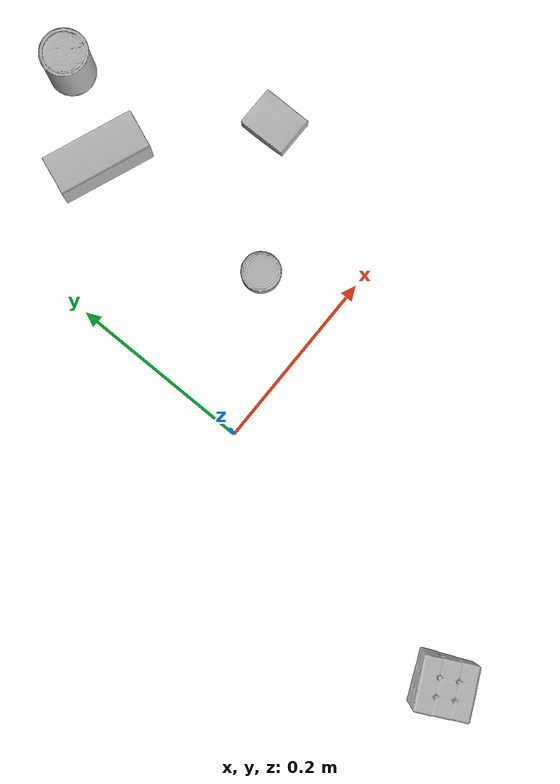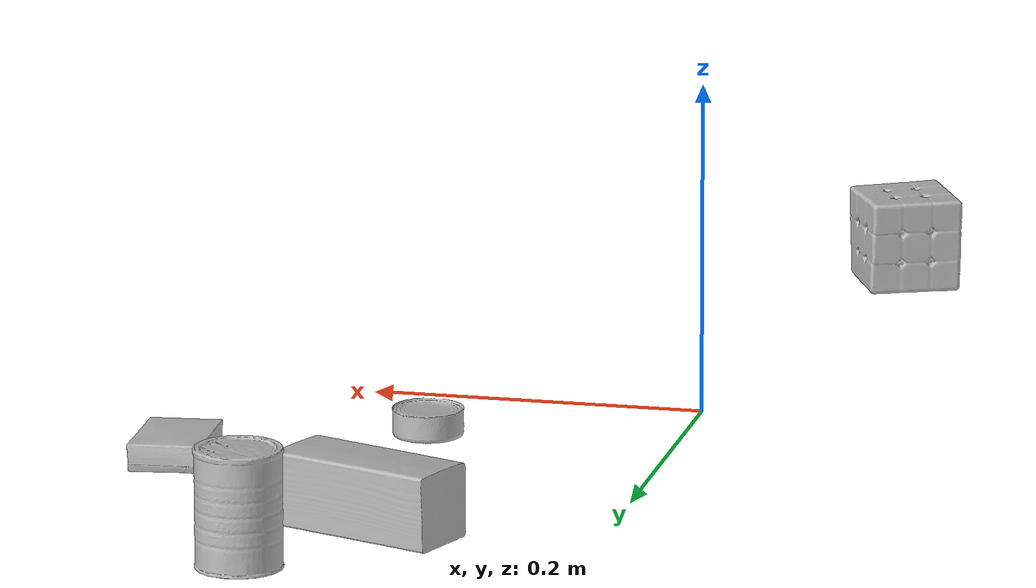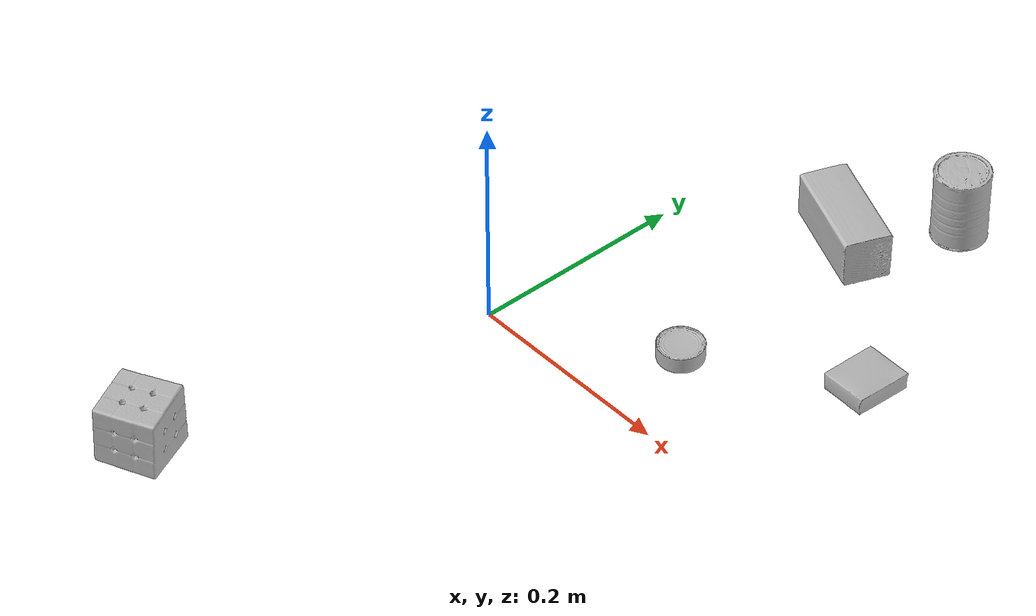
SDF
<sdf version="1.4">
  <world name="default">
    <light name="light1" type="point">
      <pose>0 0 1 0 0 0</pose>
      <diffuse>3 3 3 1</diffuse>
      <specular>3 3 3 1</specular>
    </light>
    <light name="light2" type="point">
      <pose>0 0.5 2 0 0 0</pose>
      <diffuse>1 1 1 1</diffuse>
      <specular>1 1 1 1</specular>
    </light>
    <light name="light3" type="point">
      <pose>0 0.5 2 0 0 0</pose>
      <diffuse>3 3 3 1</diffuse>
      <specular>3 3 3 1</specular>
    </light>
    <scene>
      <ambient>0.7 0.7 0.7</ambient>
    </scene>
    <model name="box1">
      <link name="link_box1">
        <collision name="default">
          <geometry>
            <mesh>
              <uri>model://rubiks_cube/collision_meshes/collision.obj</uri>
              <scale>1.0 1.0 1.0</scale>
            </mesh>
          </geometry>
          <surface>
            <friction>
              <ode>
                <mu>0.5</mu>
                <mu2>0.5</mu2>
              </ode>
            </friction>
          <contact>
        <ode>
            <max_vel>0</max_vel>
            <min_depth>0.0001</min_depth>
            <kp>1e8</kp>
        </ode>
    </contact></surface>
        </collision>
        <visual name="default">
          <geometry>
            <mesh>
              <uri>model://rubiks_cube/visual_meshes/visual.dae</uri>
              <scale>1.0 1.0 1.0</scale>
            </mesh>
          </geometry>
        </visual>
        <inertial>
          <mass>0.19534927606582642</mass>
          <pose>2.6721041649580002e-05 5.256967051536776e-05 -7.264316082000732e-06 -0.05467254413799041 -0.09813991388320625 -0.034457004790174134</pose>
          <inertia>
            <ixx>0.0001079436</ixx>
            <iyy>0.00010744019</iyy>
            <izz>0.000108838074</izz>
            <ixy>0</ixy>
            <ixz>0</ixz>
            <iyz>0</iyz>
          </inertia>
        </inertial>
      </link>
      <pose>-0.061553459614515305 -0.32308322191238403 0.02867898717522621 -2.417304718427938e-06 -4.52391018915907e-07 2.0274263589684125</pose>
    </model>
    <model name="box2">
      <link name="link_box2">
        <collision name="default">
          <geometry>
            <mesh>
              <uri>model://pudding_box/collision_meshes/collision.obj</uri>
              <scale>0.5 0.5 0.5</scale>
            </mesh>
          </geometry>
          <surface>
            <friction>
              <ode>
                <mu>0.5</mu>
                <mu2>0.5</mu2>
              </ode>
            </friction>
          <contact>
        <ode>
            <max_vel>0</max_vel>
            <min_depth>0.0001</min_depth>
            <kp>1e8</kp>
        </ode>
    </contact></surface>
        </collision>
        <visual name="default">
          <geometry>
            <mesh>
              <uri>model://pudding_box/visual_meshes/visual.dae</uri>
              <scale>0.5 0.5 0.5</scale>
            </mesh>
          </geometry>
        </visual>
        <inertial>
          <mass>0.04727919027209282</mass>
          <pose>0.00024474109522998333 0.00040339428232982755 -0.0002594413817860186 0.0052131013240192415 -0.0066037977924420415 0.020079828889419827</pose>
          <inertia>
            <ixx>1.3361672e-05</ixx>
            <iyy>8.9898285e-06</iyy>
            <izz>1.9732002e-05</izz>
            <ixy>0</ixy>
            <ixz>0</ixz>
            <iyz>0</iyz>
          </inertia>
        </inertial>
      </link>
      <pose>0.2776678800582886 0.17344844341278076 0.00986290443688631 0.022349642745683216 -0.01139098569860712 -3.1414232842954304</pose>
    </model>
    <model name="box3">
      <link name="link_box3">
        <collision name="default">
          <geometry>
            <mesh>
              <uri>model://wood_block/collision_meshes/collision.obj</uri>
              <scale>0.5 0.5 0.5</scale>
            </mesh>
          </geometry>
          <surface>
            <friction>
              <ode>
                <mu>0.5</mu>
                <mu2>0.5</mu2>
              </ode>
            </friction>
          <contact>
        <ode>
            <max_vel>0</max_vel>
            <min_depth>0.0001</min_depth>
            <kp>1e8</kp>
        </ode>
    </contact></surface>
        </collision>
        <visual name="default">
          <geometry>
            <mesh>
              <uri>model://wood_block/visual_meshes/visual.dae</uri>
              <scale>0.5 0.5 0.5</scale>
            </mesh>
          </geometry>
        </visual>
        <inertial>
          <mass>0.3041442632675171</mass>
          <pose>-2.9066577553749084e-06 -0.000285404734313488 0.00013204291462898254 -0.05220823380361383 -0.0051926957206686235 -0.0068613778665259926</pose>
          <inertia>
            <ixx>0.00010174775</ixx>
            <iyy>0.0003214212</iyy>
            <izz>0.0003202189</izz>
            <ixy>0</ixy>
            <ixz>0</ixz>
            <iyz>0</iyz>
          </inertia>
        </inertial>
      </link>
      <pose>0.13213655352592468 0.28949174284935 0.02262927033007145 -0.00520854593235609 0.005718735617512006 -0.37460394470546443</pose>
    </model>
    <model name="can1">
      <link name="link_can1">
        <collision name="default">
          <geometry>
            <mesh>
              <uri>model://master_chef_can/collision_meshes/collision.obj</uri>
              <scale>0.5 0.5 0.5</scale>
            </mesh>
          </geometry>
          <surface>
            <friction>
              <ode>
                <mu>0.5</mu>
                <mu2>0.5</mu2>
              </ode>
            </friction>
          <contact>
        <ode>
            <max_vel>0</max_vel>
            <min_depth>0.0001</min_depth>
            <kp>1e8</kp>
        </ode>
    </contact></surface>
        </collision>
        <visual name="default">
          <geometry>
            <mesh>
              <uri>model://master_chef_can/visual_meshes/visual.dae</uri>
              <scale>0.5 0.5 0.5</scale>
            </mesh>
          </geometry>
        </visual>
        <inertial>
          <mass>0.18719419836997986</mass>
          <pose>-4.661963976104744e-05 1.3926856468060578e-07 -5.0798327720258385e-05 -0.0017995099067415357 0.0006479319374111454 -0.6102582770449616</pose>
          <inertia>
            <ixx>0.0001098703</ixx>
            <iyy>0.00010906167</iyy>
            <izz>6.071174e-05</izz>
            <ixy>0</ixy>
            <ixz>0</ixz>
            <iyz>0</iyz>
          </inertia>
        </inertial>
      </link>
      <pose>0.18690906465053558 0.37404611706733704 0.03530198708176613 -1.6655274233918794e-06 -1.0892448040561161e-06 -0.1556727575060546</pose>
    </model>
    <model name="can2">
      <link name="link_can2">
        <collision name="default">
          <geometry>
            <mesh>
              <uri>model://tuna_fish_can/collision_meshes/collision.obj</uri>
              <scale>0.5 0.5 0.5</scale>
            </mesh>
          </geometry>
          <surface>
            <friction>
              <ode>
                <mu>0.5</mu>
                <mu2>0.5</mu2>
              </ode>
            </friction>
          <contact>
        <ode>
            <max_vel>0</max_vel>
            <min_depth>0.0001</min_depth>
            <kp>1e8</kp>
        </ode>
    </contact></surface>
        </collision>
        <visual name="default">
          <geometry>
            <mesh>
              <uri>model://tuna_fish_can/visual_meshes/visual.dae</uri>
              <scale>0.5 0.5 0.5</scale>
            </mesh>
          </geometry>
        </visual>
        <inertial>
          <mass>0.011327341198921204</mass>
          <pose>-2.0361354472697712e-05 -7.256336175487377e-06 -0.0005269023822620511 -0.001794480782384504 0.00017159763230480823 0.24052991368062646</pose>
          <inertia>
            <ixx>1.5314733e-06</ixx>
            <iyy>1.52509e-06</iyy>
            <izz>2.6205691e-06</izz>
            <ixy>0</ixy>
            <ixz>0</ixz>
            <iyz>0</iyz>
          </inertia>
        </inertial>
      </link>
      <pose>0.14715102314949036 0.08448981493711472 0.008520003408193588 1.187466462811669e-08 1.1151936493181667e-08 2.2180026833617585</pose>
    </model>
  <physics type="ode">
      <max_contacts>50</max_contacts>
      <ode>
        <solver>
          <type>quick</type>
          <iters>75</iters>
        </solver>
        <constraints>
          <contact_max_correcting_vel>0</contact_max_correcting_vel>
          <contact_surface_layer>0</contact_surface_layer>
        </constraints>
      </ode>
    </physics></world>
</sdf>
